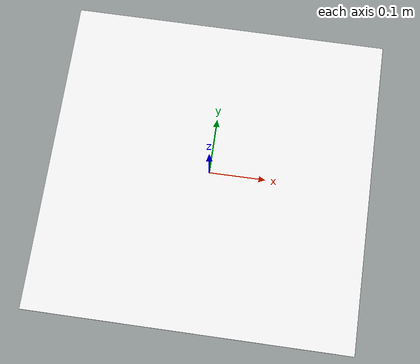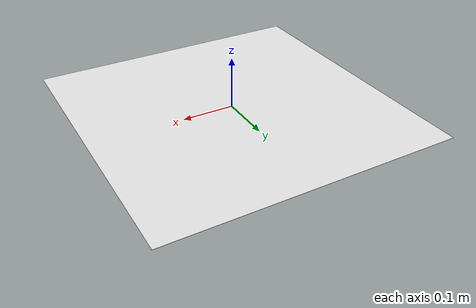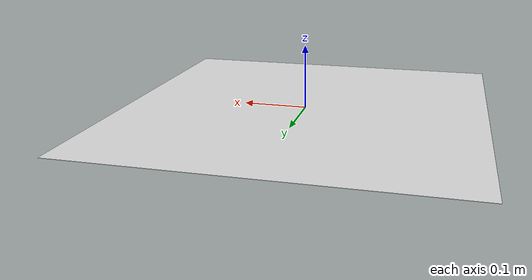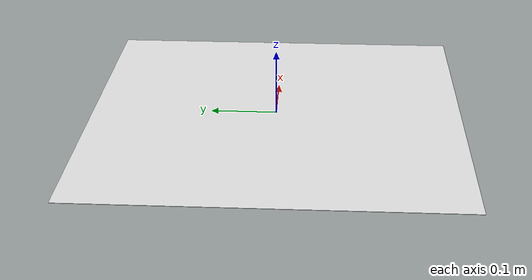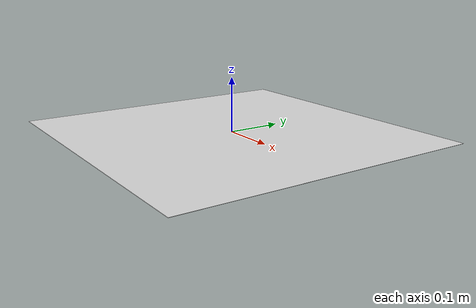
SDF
<?xml version="1.0" ?>
<sdf version="1.10">
  <model name="fractal_4L_6">
    <static>true</static>
    <pose>0 0 0 0 0 0</pose>
    <link name="link">
      <visual name="visual">
        <cast_shadows>false</cast_shadows>
        <geometry>
          <plane>
            <normal>0 0 1</normal>
            <size>0.567 0.567</size> <!--Remember to add the margin equation size = (size_0(17))/15 with size_0 = 0.5-->
          </plane>
        </geometry>
        <material>
          <ambient>1 1 1 1</ambient>
          <diffuse>1 1 1 1</diffuse>
          <specular>0 0 0 1</specular>
          <pbr>
            <metal>
              <albedo_map>model://fractal_4L_6/materials/textures/fractal_4L_6.png</albedo_map>
              <metalness>0</metalness>
              <roughness>1</roughness>
            </metal>
          </pbr>
        </material>
      </visual>
    </link>
  </model>
</sdf>
